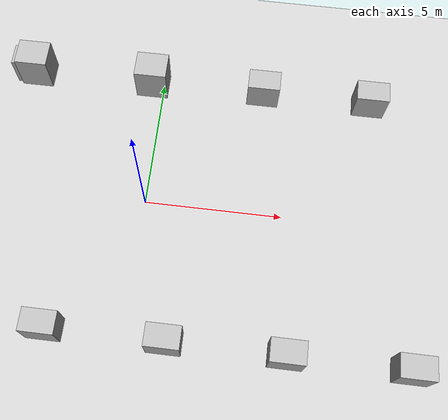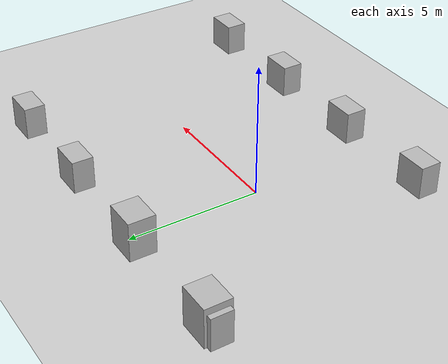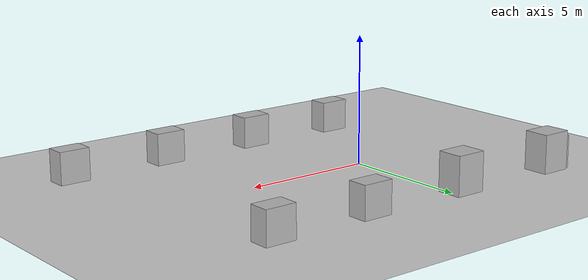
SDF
<sdf version="1.7">
 <world name="default">
  <light name="sun" type="directional">
   <pose>0 0 10 0 -0 0</pose>
   <diffuse>0.8 0.8 0.8 1</diffuse>
   <specular>0.2 0.2 0.2 1</specular>
   <attenuation>
    <range>1000</range>
    <constant>0.9</constant>
    <linear>0.01</linear>
    <quadratic>0.001</quadratic>
   </attenuation>
   <direction>-0.5 0.1 -0.9</direction>
   <spot><inner_angle>0</inner_angle><outer_angle>0</outer_angle><falloff>0</falloff></spot>
  </light>
  <model name="ground_plane">
   <static>1</static>
   <link name="link">
    <collision name="collision">
     <geometry><plane><normal>0 0 1</normal><size>100 100</size></plane></geometry>
     <surface><friction><ode><mu>100</mu><mu2>50</mu2></ode></friction></surface>
    </collision>
    <visual name="visual">
     <cast_shadows>0</cast_shadows>
     <geometry><plane><normal>0 0 1</normal><size>100 100</size></plane></geometry>
     <material>
      <script><uri>file://media/materials/scripts/gazebo.material</uri><name>Gazebo/Grey</name></script>
     </material>
    </visual>
   </link>
  </model>
  <gravity>0 0 -9.8</gravity>
  <magnetic_field>6e-06 2.3e-05 -4.2e-05</magnetic_field>
  <atmosphere type="adiabatic"/>
  <physics type="ode">
   <max_step_size>0.001</max_step_size>
   <real_time_factor>1</real_time_factor>
   <real_time_update_rate>1000</real_time_update_rate>
  </physics>
  <scene><ambient>0.4 0.4 0.4 1</ambient><background>0.7 0.7 0.7 1</background><shadows>1</shadows></scene>
  <spherical_coordinates>
   <surface_model>EARTH_WGS84</surface_model>
   <latitude_deg>0</latitude_deg>
   <longitude_deg>0</longitude_deg>
   <elevation>0</elevation>
   <heading_deg>0</heading_deg>
  </spherical_coordinates>
  <model name="Big box">
   <pose>-5 5 0.749498 0 -0.000831 0</pose>
   <static>0</static>
   <link name="link">
    <inertial>
     <mass>40</mass>
     <inertia><ixx>1</ixx><ixy>0</ixy><ixz>0</ixz><iyy>1</iyy><iyz>0</iyz><izz>1</izz></inertia>
    </inertial>
    <collision name="collision">
     <geometry><box><size>1.2 0.8 1.5</size></box></geometry>
     <surface><contact><ode><max_vel>0.1</max_vel><min_depth>0.001</min_depth></ode></contact></surface>
    </collision>
    <visual name="visual"><geometry><mesh><uri>model://big_box/meshes/big_box.dae</uri></mesh></geometry></visual>
    <kinematic>1</kinematic>
   </link>
   <plugin name="random" filename="libRandomVelocityPlugin.so">
    <link>link</link>
    <initial_velocity>0 0 0</initial_velocity>
    <velocity_factor>1.0</velocity_factor>
    <update_period>5</update_period>
    <min_z>0</min_z>
    <max_z>0</max_z>
    <min_x>-0.35</min_x>
    <max_x>0.35</max_x>
    <min_y>-0.35</min_y>
    <max_y>0.35</max_y>
   </plugin>
  </model>
  <model name="big_box3">
   <pose>-5.19991 5 0.624657 0 0.000571 -2e-06</pose>
   <static>0</static>
   <link name="link">
    <inertial>
     <mass>40</mass>
     <inertia><ixx>1</ixx><ixy>0</ixy><ixz>0</ixz><iyy>1</iyy><iyz>0</iyz><izz>1</izz></inertia>
    </inertial>
    <collision name="collision">
     <geometry><box><size>1.2 0.8 1.25</size></box></geometry>
     <surface><contact><ode><max_vel>0.1</max_vel><min_depth>0.001</min_depth></ode></contact></surface>
    </collision>
    <visual name="visual">
     <geometry><mesh><uri>model://big_box3/meshes/big_box.dae</uri></mesh></geometry>
    </visual>
    <kinematic>1</kinematic>
   </link>
   <plugin name="random2" filename="libRandomVelocityPlugin.so">
    <link>link</link>
    <initial_velocity>0 0 0</initial_velocity>
    <velocity_factor>1.0</velocity_factor>
    <update_period>5</update_period>
    <min_z>0</min_z>
    <max_z>0</max_z>
    <min_x>-0.35</min_x>
    <max_x>0.35</max_x>
    <min_y>-0.35</min_y>
    <max_y>0.35</max_y>
   </plugin>
  </model>
  <model name="Big box 4">
   <pose>-2.68376 -5 0.624697 0 0.000496 -1e-06</pose>
   <static>0</static>
   <link name="link">
    <inertial>
     <mass>40</mass>
     <inertia><ixx>1</ixx><ixy>0</ixy><ixz>0</ixz><iyy>1</iyy><iyz>0</iyz><izz>1</izz></inertia>
    </inertial>
    <collision name="collision">
     <geometry><box><size>1.2 0.8 1.25</size></box></geometry>
     <surface><contact><ode><max_vel>0.1</max_vel><min_depth>0.001</min_depth></ode></contact></surface>
    </collision>
    <visual name="visual">
     <geometry><mesh><uri>model://big_box4/meshes/big_box.dae</uri></mesh></geometry>
    </visual>
    <kinematic>1</kinematic>
   </link>
   <plugin name="random3" filename="libRandomVelocityPlugin.so">
    <link>link</link>
    <initial_velocity>0 0 0</initial_velocity>
    <velocity_factor>1.0</velocity_factor>
    <update_period>5</update_period>
    <min_z>0</min_z>
    <max_z>0</max_z>
    <min_x>-0.35</min_x>
    <max_x>0.35</max_x>
    <min_y>-0.35</min_y>
    <max_y>0.35</max_y>
   </plugin>
  </model>
  <model name="Big box_0">
   <pose>-0.428051 5 0.749574 0 -0.000705 0</pose>
   <static>0</static>
   <link name="link">
    <inertial>
     <mass>40</mass>
     <inertia><ixx>1</ixx><ixy>0</ixy><ixz>0</ixz><iyy>1</iyy><iyz>0</iyz><izz>1</izz></inertia>
    </inertial>
    <collision name="collision">
     <geometry><box><size>1.2 0.8 1.5</size></box></geometry>
     <surface><contact><ode><max_vel>0.1</max_vel><min_depth>0.001</min_depth></ode></contact></surface>
    </collision>
    <visual name="visual"><geometry><mesh><uri>model://big_box/meshes/big_box.dae</uri></mesh></geometry></visual>
    <kinematic>1</kinematic>
   </link>
   <plugin name="random4" filename="libRandomVelocityPlugin.so">
    <link>link</link>
    <initial_velocity>0 0 0</initial_velocity>
    <velocity_factor>1.0</velocity_factor>
    <update_period>5</update_period>
    <min_z>0</min_z>
    <max_z>0</max_z>
    <min_x>-0.35</min_x>
    <max_x>0.35</max_x>
    <min_y>-0.35</min_y>
    <max_y>0.35</max_y>
   </plugin>
  </model>
  <model name="Big box 4_0">
   <pose>1.42846 -5 0.624781 0 0.000353 -1e-06</pose>
   <static>0</static>
   <link name="link">
    <inertial>
     <mass>40</mass>
     <inertia><ixx>1</ixx><ixy>0</ixy><ixz>0</ixz><iyy>1</iyy><iyz>0</iyz><izz>1</izz></inertia>
    </inertial>
    <collision name="collision">
     <geometry><box><size>1.2 0.8 1.25</size></box></geometry>
     <surface><contact><ode><max_vel>0.1</max_vel><min_depth>0.001</min_depth></ode></contact></surface>
    </collision>
    <visual name="visual">
     <geometry><mesh><uri>model://big_box4/meshes/big_box.dae</uri></mesh></geometry>
    </visual>
    <kinematic>1</kinematic>
   </link>
   <plugin name="random" filename="libRandomVelocityPlugin.so">
    <link>link</link>
    <initial_velocity>0 0 0</initial_velocity>
    <velocity_factor>1.0</velocity_factor>
    <update_period>5</update_period>
    <min_z>0</min_z>
    <max_z>0</max_z>
    <min_x>-0.35</min_x>
    <max_x>0.35</max_x>
    <min_y>-0.35</min_y>
    <max_y>0.35</max_y>
   </plugin>
  </model>
  <model name="Big box 4_1">
   <pose>5.51303 -5 0.624826 -0 0.000285 -1e-06</pose>
   <static>0</static>
   <link name="link">
    <inertial>
     <mass>40</mass>
     <inertia><ixx>1</ixx><ixy>0</ixy><ixz>0</ixz><iyy>1</iyy><iyz>0</iyz><izz>1</izz></inertia>
    </inertial>
    <collision name="collision">
     <geometry><box><size>1.2 0.8 1.25</size></box></geometry>
     <surface><contact><ode><max_vel>0.1</max_vel><min_depth>0.001</min_depth></ode></contact></surface>
    </collision>
    <visual name="visual">
     <geometry><mesh><uri>model://big_box4/meshes/big_box.dae</uri></mesh></geometry>
    </visual>
    <kinematic>1</kinematic>
   </link>
   <plugin name="random" filename="libRandomVelocityPlugin.so">
    <link>link</link>
    <initial_velocity>0 0 0</initial_velocity>
    <velocity_factor>1.0</velocity_factor>
    <update_period>5</update_period>
    <min_z>0</min_z>
    <max_z>0</max_z>
    <min_x>-0.35</min_x>
    <max_x>0.35</max_x>
    <min_y>-0.35</min_y>
    <max_y>0.35</max_y>
   </plugin>
  </model>
  <model name="big_box3_0">
   <pose>3.88579 5 0.624866 -0 0.000211 -1e-06</pose>
   <static>0</static>
   <link name="link">
    <inertial>
     <mass>40</mass>
     <inertia><ixx>1</ixx><ixy>0</ixy><ixz>0</ixz><iyy>1</iyy><iyz>0</iyz><izz>1</izz></inertia>
    </inertial>
    <collision name="collision">
     <geometry><box><size>1.2 0.8 1.25</size></box></geometry>
     <surface><contact><ode><max_vel>0.1</max_vel><min_depth>0.001</min_depth></ode></contact></surface>
    </collision>
    <visual name="visual">
     <geometry><mesh><uri>model://big_box3/meshes/big_box.dae</uri></mesh></geometry>
    </visual>
    <kinematic>1</kinematic>
   </link>
   <plugin name="random" filename="libRandomVelocityPlugin.so">
    <link>link</link>
    <initial_velocity>0 0 0</initial_velocity>
    <velocity_factor>1.0</velocity_factor>
    <update_period>5</update_period>
    <min_z>0</min_z>
    <max_z>0</max_z>
    <min_x>-0.35</min_x>
    <max_x>0.35</max_x>
    <min_y>-0.35</min_y>
    <max_y>0.35</max_y>
   </plugin>
  </model>
  <model name="Big box 4_2">
   <pose>9.65175 -5 0.62491 0 0.000143 0</pose>
   <static>0</static>
   <link name="link">
    <inertial>
     <mass>40</mass>
     <inertia><ixx>1</ixx><ixy>0</ixy><ixz>0</ixz><iyy>1</iyy><iyz>0</iyz><izz>1</izz></inertia>
    </inertial>
    <collision name="collision">
     <geometry><box><size>1.2 0.8 1.25</size></box></geometry>
     <surface><contact><ode><max_vel>0.1</max_vel><min_depth>0.001</min_depth></ode></contact></surface>
    </collision>
    <visual name="visual">
     <geometry><mesh><uri>model://big_box4/meshes/big_box.dae</uri></mesh></geometry>
    </visual>
    <kinematic>1</kinematic>
   </link>
   <plugin name="random" filename="libRandomVelocityPlugin.so">
    <link>link</link>
    <initial_velocity>0 0 0</initial_velocity>
    <velocity_factor>1.0</velocity_factor>
    <update_period>5</update_period>
    <min_z>0</min_z>
    <max_z>0</max_z>
    <min_x>-0.35</min_x>
    <max_x>0.35</max_x>
    <min_y>-0.35</min_y>
    <max_y>0.35</max_y>
   </plugin>
  </model>
  <model name="big_box3_1">
   <pose>7.98155 5 0.62495 0 6.9e-05 0</pose>
   <static>0</static>
   <link name="link">
    <inertial>
     <mass>40</mass>
     <inertia><ixx>1</ixx><ixy>0</ixy><ixz>0</ixz><iyy>1</iyy><iyz>0</iyz><izz>1</izz></inertia>
    </inertial>
    <collision name="collision">
     <geometry><box><size>1.2 0.8 1.25</size></box></geometry>
     <surface><contact><ode><max_vel>0.1</max_vel><min_depth>0.001</min_depth></ode></contact></surface>
    </collision>
    <visual name="visual">
     <geometry><mesh><uri>model://big_box3/meshes/big_box.dae</uri></mesh></geometry>
    </visual>
    <kinematic>1</kinematic>
   </link>
   <plugin name="random23" filename="libRandomVelocityPlugin.so">
    <link>link</link>
    <initial_velocity>0 0 0</initial_velocity>
    <velocity_factor>1.0</velocity_factor>
    <update_period>5</update_period>
    <min_z>0</min_z>
    <max_z>0</max_z>
    <min_x>-0.35</min_x>
    <max_x>0.35</max_x>
    <min_y>-0.35</min_y>
    <max_y>0.35</max_y>
   </plugin>
  </model>
 </world>
</sdf>
